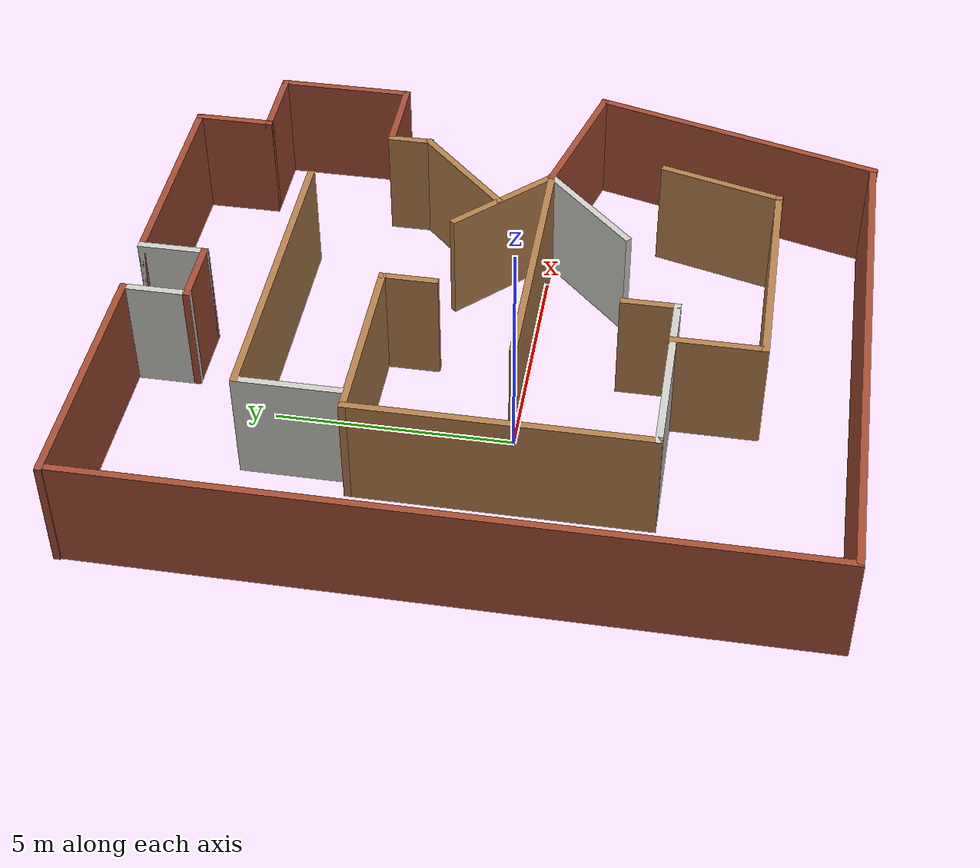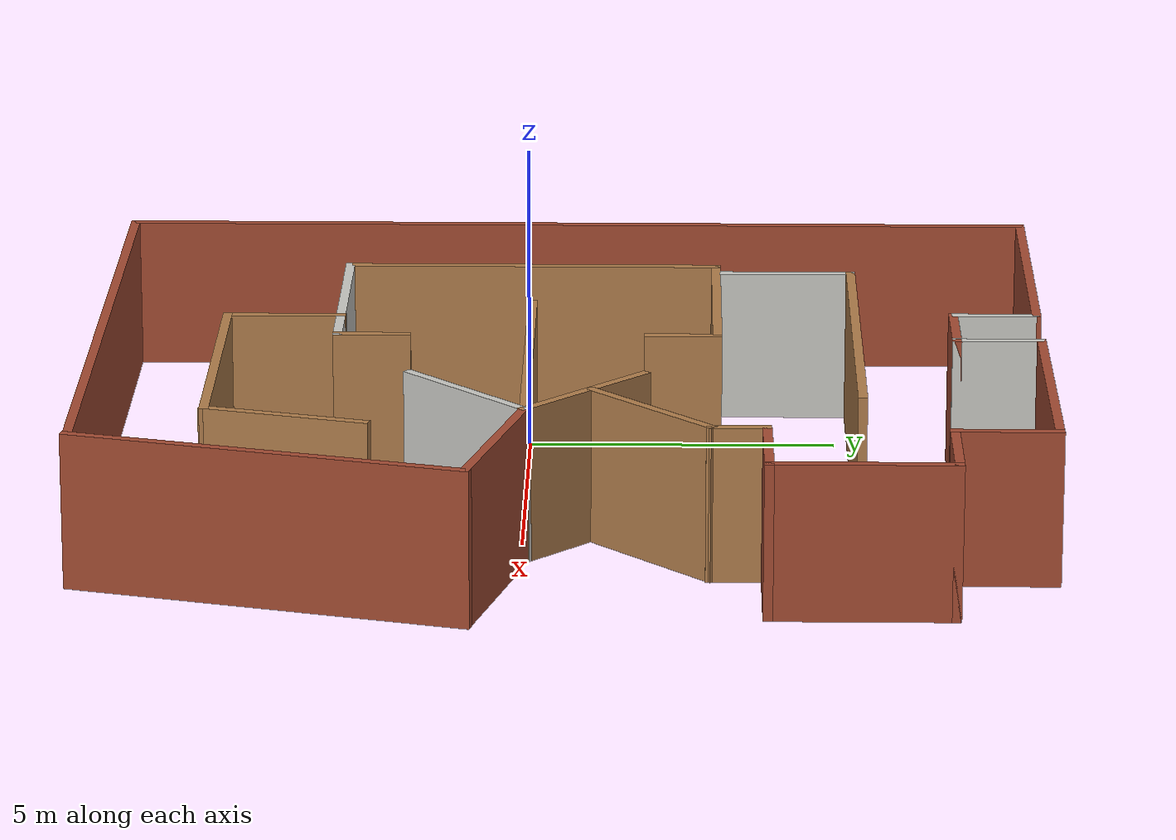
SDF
<?xml version='1.0'?>
<sdf version='1.6'>
  <model name='dat160_w1'>
    <pose frame=''>2.1593 0.681212 0 0 -0 0</pose>
    <link name='Wall_11'>
      <collision name='Wall_11_Collision'>
        <geometry>
          <box>
            <size>5.75 0.15 2.5</size>
          </box>
        </geometry>
        <pose frame=''>0 0 1.25 0 -0 0</pose>
      </collision>
      <visual name='Wall_11_Visual'>
        <pose frame=''>0 0 1.25 0 -0 0</pose>
        <geometry>
          <box>
            <size>5.75 0.15 2.5</size>
          </box>
        </geometry>
        <material>
          <script>
            <uri>file://media/materials/scripts/gazebo.material</uri>
            <name>Gazebo/Wood</name>
          </script>
          <ambient>1 1 1 1</ambient>
        </material>
        <meta>
          <layer>0</layer>
        </meta>
      </visual>
      <pose frame=''>0.799878 -0.630205 0 0 -0 0</pose>
    </link>
    <link name='Wall_14'>
      <collision name='Wall_14_Collision'>
        <geometry>
          <box>
            <size>2.75 0.15 2.5</size>
          </box>
        </geometry>
        <pose frame=''>0 0 1.25 0 -0 0</pose>
      </collision>
      <visual name='Wall_14_Visual'>
        <pose frame=''>0 0 1.25 0 -0 0</pose>
        <geometry>
          <box>
            <size>2.75 0.15 2.5</size>
          </box>
        </geometry>
        <material>
          <script>
            <uri>file://media/materials/scripts/gazebo.material</uri>
            <name>Gazebo/Wood</name>
          </script>
          <ambient>1 1 1 1</ambient>
        </material>
        <meta>
          <layer>0</layer>
        </meta>
      </visual>
      <pose frame=''>2.68064 0.289034 0 0 -0 2.35619</pose>
    </link>
    <link name='Wall_16'>
      <collision name='Wall_16_Collision'>
        <geometry>
          <box>
            <size>2.75 0.15 2.5</size>
          </box>
        </geometry>
        <pose frame=''>0 0 1.25 0 -0 0</pose>
      </collision>
      <visual name='Wall_16_Visual'>
        <pose frame=''>0 0 1.25 0 -0 0</pose>
        <geometry>
          <box>
            <size>2.75 0.15 2.5</size>
          </box>
        </geometry>
        <material>
          <script>
            <uri>file://media/materials/scripts/gazebo.material</uri>
            <name>Gazebo/CeilingTiled</name>
          </script>
          <ambient>1 1 1 1</ambient>
        </material>
        <meta>
          <layer>0</layer>
        </meta>
      </visual>
      <pose frame=''>2.68064 -1.54944 0 0 -0 -2.35619</pose>
    </link>
    <link name='Wall_18'>
      <collision name='Wall_18_Collision'>
        <geometry>
          <box>
            <size>2 0.15 2.5</size>
          </box>
        </geometry>
        <pose frame=''>0 0 1.25 0 -0 0</pose>
      </collision>
      <visual name='Wall_18_Visual'>
        <pose frame=''>0 0 1.25 0 -0 0</pose>
        <geometry>
          <box>
            <size>2 0.15 2.5</size>
          </box>
        </geometry>
        <material>
          <script>
            <uri>file://media/materials/scripts/gazebo.material</uri>
            <name>Gazebo/Wood</name>
          </script>
          <ambient>1 1 1 1</ambient>
        </material>
        <meta>
          <layer>0</layer>
        </meta>
      </visual>
      <pose frame=''>-1.22872 -4.64083 0 0 -0 -1.5708</pose>
    </link>
    <link name='Wall_19'>
      <collision name='Wall_19_Collision'>
        <geometry>
          <box>
            <size>5 0.15 2.5</size>
          </box>
        </geometry>
        <pose frame=''>0 0 1.25 0 -0 0</pose>
      </collision>
      <visual name='Wall_19_Visual'>
        <pose frame=''>0 0 1.25 0 -0 0</pose>
        <geometry>
          <box>
            <size>5 0.15 2.5</size>
          </box>
        </geometry>
        <material>
          <script>
            <uri>file://media/materials/scripts/gazebo.material</uri>
            <name>Gazebo/Wood</name>
          </script>
          <ambient>1 1 1 1</ambient>
        </material>
        <meta>
          <layer>0</layer>
        </meta>
      </visual>
      <pose frame=''>1.19628 -5.56583 0 0 -0 0</pose>
    </link>
    <link name='Wall_20'>
      <collision name='Wall_20_Collision'>
        <geometry>
          <box>
            <size>2.75 0.15 2.5</size>
          </box>
        </geometry>
        <pose frame=''>0 0 1.25 0 -0 0</pose>
      </collision>
      <visual name='Wall_20_Visual'>
        <pose frame=''>0 0 1.25 0 -0 0</pose>
        <geometry>
          <box>
            <size>2.75 0.15 2.5</size>
          </box>
        </geometry>
        <material>
          <script>
            <uri>file://media/materials/scripts/gazebo.material</uri>
            <name>Gazebo/Wood</name>
          </script>
          <ambient>1 1 1 1</ambient>
        </material>
        <meta>
          <layer>0</layer>
        </meta>
      </visual>
      <pose frame=''>3.95775 -4.31013 0 0 -0 1.309</pose>
    </link>
    <link name='Wall_23'>
      <collision name='Wall_23_Collision'>
        <geometry>
          <box>
            <size>2.25 0.15 2.5</size>
          </box>
        </geometry>
        <pose frame=''>0 0 1.25 0 -0 0</pose>
      </collision>
      <visual name='Wall_23_Visual'>
        <pose frame=''>0 0 1.25 0 -0 0</pose>
        <geometry>
          <box>
            <size>2.25 0.15 2.5</size>
          </box>
        </geometry>
        <material>
          <script>
            <uri>file://media/materials/scripts/gazebo.material</uri>
            <name>Gazebo/CeilingTiled</name>
          </script>
          <ambient>1 1 1 1</ambient>
        </material>
        <meta>
          <layer>0</layer>
        </meta>
      </visual>
      <pose frame=''>-3.70254 3.55862 0 0 -0 1.5708</pose>
    </link>
    <link name='Wall_24'>
      <collision name='Wall_24_Collision'>
        <geometry>
          <box>
            <size>6.75 0.15 2.5</size>
          </box>
        </geometry>
        <pose frame=''>0 0 1.25 0 -0 0</pose>
      </collision>
      <visual name='Wall_24_Visual'>
        <pose frame=''>0 0 1.25 0 -0 0</pose>
        <geometry>
          <box>
            <size>6.75 0.15 2.5</size>
          </box>
        </geometry>
        <material>
          <script>
            <uri>file://media/materials/scripts/gazebo.material</uri>
            <name>Gazebo/Wood</name>
          </script>
          <ambient>1 1 1 1</ambient>
        </material>
        <meta>
          <layer>0</layer>
        </meta>
      </visual>
      <pose frame=''>-0.402535 4.60862 0 0 -0 0</pose>
    </link>
    <link name='Wall_26'>
      <collision name='Wall_26_Collision'>
        <geometry>
          <box>
            <size>2.75 0.15 2.5</size>
          </box>
        </geometry>
        <pose frame=''>0 0 1.25 0 -0 0</pose>
      </collision>
      <visual name='Wall_26_Visual'>
        <pose frame=''>0 0 1.25 0 -0 0</pose>
        <geometry>
          <box>
            <size>2.75 0.15 2.5</size>
          </box>
        </geometry>
        <material>
          <script>
            <uri>file://media/materials/scripts/gazebo.material</uri>
            <name>Gazebo/Wood</name>
          </script>
          <ambient>1 1 1 1</ambient>
        </material>
        <meta>
          <layer>0</layer>
        </meta>
      </visual>
      <pose frame=''>3.52095 1.32644 0 0 -0 0.785398</pose>
    </link>
    <link name='Wall_27'>
      <collision name='Wall_27_Collision'>
        <geometry>
          <box>
            <size>1 0.15 2.5</size>
          </box>
        </geometry>
        <pose frame=''>0 0 1.25 0 -0 0</pose>
      </collision>
      <visual name='Wall_27_Visual'>
        <pose frame=''>0 0 1.25 0 -0 0</pose>
        <geometry>
          <box>
            <size>1 0.15 2.5</size>
          </box>
        </geometry>
        <material>
          <script>
            <uri>file://media/materials/scripts/gazebo.material</uri>
            <name>Gazebo/Wood</name>
          </script>
          <ambient>1 1 1 1</ambient>
        </material>
        <meta>
          <layer>0</layer>
        </meta>
      </visual>
      <pose frame=''>4.44019 2.67068 0 0 -0 1.5708</pose>
    </link>
    <link name='Wall_3'>
      <collision name='Wall_3_Collision'>
        <geometry>
          <box>
            <size>4 0.15 2.5</size>
          </box>
        </geometry>
        <pose frame=''>0 0 1.25 0 -0 0</pose>
      </collision>
      <visual name='Wall_3_Visual'>
        <pose frame=''>0 0 1.25 0 -0 0</pose>
        <geometry>
          <box>
            <size>4 0.15 2.5</size>
          </box>
        </geometry>
        <material>
          <script>
            <uri>file://media/materials/scripts/gazebo.material</uri>
            <name>Gazebo/Wood</name>
          </script>
          <ambient>1 1 1 1</ambient>
        </material>
        <meta>
          <layer>0</layer>
        </meta>
      </visual>
      <pose frame=''>-2.14994 2.37562 0 0 -0 0</pose>
    </link>
    <link name='Wall_31'>
      <collision name='Wall_31_Collision'>
        <geometry>
          <box>
            <size>1.5 0.15 2.5</size>
          </box>
        </geometry>
        <pose frame=''>0 0 1.25 0 -0 0</pose>
      </collision>
      <visual name='Wall_31_Visual'>
        <pose frame=''>0 0 1.25 0 -0 0</pose>
        <geometry>
          <box>
            <size>1.5 0.15 2.5</size>
          </box>
        </geometry>
        <material>
          <script>
            <uri>file://media/materials/scripts/gazebo.material</uri>
            <name>Gazebo/Bricks</name>
          </script>
          <ambient>1 1 1 1</ambient>
        </material>
        <meta>
          <layer>0</layer>
        </meta>
      </visual>
      <pose frame=''>-0.713318 6.20605 0 0 -0 0</pose>
    </link>
    <link name='Wall_32'>
      <collision name='Wall_32_Collision'>
        <geometry>
          <box>
            <size>1.5 0.15 2.5</size>
          </box>
        </geometry>
        <pose frame=''>0 0 1.25 0 -0 0</pose>
      </collision>
      <visual name='Wall_32_Visual'>
        <pose frame=''>0 0 1.25 0 -0 0</pose>
        <geometry>
          <box>
            <size>1.5 0.15 2.5</size>
          </box>
        </geometry>
        <material>
          <script>
            <uri>file://media/materials/scripts/gazebo.material</uri>
            <name>Gazebo/CeilingTiled</name>
          </script>
          <ambient>1 1 1 1</ambient>
        </material>
        <meta>
          <layer>0</layer>
        </meta>
      </visual>
      <pose frame=''>-0.038317 6.88105 0 0 -0 1.5708</pose>
    </link>
    <link name='Wall_33'>
      <collision name='Wall_33_Collision'>
        <geometry>
          <box>
            <size>4.75 0.15 2.5</size>
          </box>
        </geometry>
        <pose frame=''>0 0 1.25 0 -0 0</pose>
      </collision>
      <visual name='Wall_33_Visual'>
        <pose frame=''>0 0 1.25 0 -0 0</pose>
        <geometry>
          <box>
            <size>4.75 0.15 2.5</size>
          </box>
        </geometry>
        <material>
          <script>
            <uri>file://media/materials/scripts/gazebo.material</uri>
            <name>Gazebo/Bricks</name>
          </script>
          <ambient>1 1 1 1</ambient>
        </material>
        <meta>
          <layer>0</layer>
        </meta>
      </visual>
      <pose frame=''>2.26168 7.55605 0 0 -0 0</pose>
    </link>
    <link name='Wall_34'>
      <collision name='Wall_34_Collision'>
        <geometry>
          <box>
            <size>1.75 0.15 2.5</size>
          </box>
        </geometry>
        <pose frame=''>0 0 1.25 0 -0 0</pose>
      </collision>
      <visual name='Wall_34_Visual'>
        <pose frame=''>0 0 1.25 0 -0 0</pose>
        <geometry>
          <box>
            <size>1.75 0.15 2.5</size>
          </box>
        </geometry>
        <material>
          <script>
            <uri>file://media/materials/scripts/gazebo.material</uri>
            <name>Gazebo/Bricks</name>
          </script>
          <ambient>1 1 1 1</ambient>
        </material>
        <meta>
          <layer>0</layer>
        </meta>
      </visual>
      <pose frame=''>4.56168 6.75605 0 0 -0 -1.5708</pose>
    </link>
    <link name='Wall_35'>
      <collision name='Wall_35_Collision'>
        <geometry>
          <box>
            <size>1.75 0.15 2.5</size>
          </box>
        </geometry>
        <pose frame=''>0 0 1.25 0 -0 0</pose>
      </collision>
      <visual name='Wall_35_Visual'>
        <pose frame=''>0 0 1.25 0 -0 0</pose>
        <geometry>
          <box>
            <size>1.75 0.15 2.5</size>
          </box>
        </geometry>
        <material>
          <script>
            <uri>file://media/materials/scripts/gazebo.material</uri>
            <name>Gazebo/Bricks</name>
          </script>
          <ambient>1 1 1 1</ambient>
        </material>
        <meta>
          <layer>0</layer>
        </meta>
      </visual>
      <pose frame=''>5.36168 5.95605 0 0 -0 0</pose>
    </link>
    <link name='Wall_36'>
      <collision name='Wall_36_Collision'>
        <geometry>
          <box>
            <size>3 0.15 2.5</size>
          </box>
        </geometry>
        <pose frame=''>0 0 1.25 0 -0 0</pose>
      </collision>
      <visual name='Wall_36_Visual'>
        <pose frame=''>0 0 1.25 0 -0 0</pose>
        <geometry>
          <box>
            <size>3 0.15 2.5</size>
          </box>
        </geometry>
        <material>
          <script>
            <uri>file://media/materials/scripts/gazebo.material</uri>
            <name>Gazebo/Bricks</name>
          </script>
          <ambient>1 1 1 1</ambient>
        </material>
        <meta>
          <layer>0</layer>
        </meta>
      </visual>
      <pose frame=''>6.16168 4.53105 0 0 -0 -1.5708</pose>
    </link>
    <link name='Wall_37'>
      <collision name='Wall_37_Collision'>
        <geometry>
          <box>
            <size>1.75 0.15 2.5</size>
          </box>
        </geometry>
        <pose frame=''>0 0 1.25 0 -0 0</pose>
      </collision>
      <visual name='Wall_37_Visual'>
        <pose frame=''>0 0 1.25 0 -0 0</pose>
        <geometry>
          <box>
            <size>1.75 0.15 2.5</size>
          </box>
        </geometry>
        <material>
          <script>
            <uri>file://media/materials/scripts/gazebo.material</uri>
            <name>Gazebo/Bricks</name>
          </script>
          <ambient>1 1 1 1</ambient>
        </material>
        <meta>
          <layer>0</layer>
        </meta>
      </visual>
      <pose frame=''>5.36168 3.10605 0 0 -0 3.14159</pose>
    </link>
    <link name='Wall_39'>
      <collision name='Wall_39_Collision'>
        <geometry>
          <box>
            <size>1.5 0.15 2.5</size>
          </box>
        </geometry>
        <pose frame=''>0 0 1.25 0 -0 0</pose>
      </collision>
      <visual name='Wall_39_Visual'>
        <pose frame=''>0 0 1.25 0 -0 0</pose>
        <geometry>
          <box>
            <size>1.5 0.15 2.5</size>
          </box>
        </geometry>
        <material>
          <script>
            <uri>file://media/materials/scripts/gazebo.material</uri>
            <name>Gazebo/CeilingTiled</name>
          </script>
          <ambient>1 1 1 1</ambient>
        </material>
        <meta>
          <layer>0</layer>
        </meta>
      </visual>
      <pose frame=''>-1.38832 6.88105 0 0 -0 1.5708</pose>
    </link>
    <link name='Wall_41'>
      <collision name='Wall_41_Collision'>
        <geometry>
          <box>
            <size>5.34587 0.15 2.5</size>
          </box>
        </geometry>
        <pose frame=''>0 0 1.25 0 -0 0</pose>
      </collision>
      <visual name='Wall_41_Visual'>
        <pose frame=''>0 0 1.25 0 -0 0</pose>
        <geometry>
          <box>
            <size>5.34587 0.15 2.5</size>
          </box>
        </geometry>
        <material>
          <script>
            <uri>file://media/materials/scripts/gazebo.material</uri>
            <name>Gazebo/Bricks</name>
          </script>
          <ambient>1 1 1 1</ambient>
        </material>
        <meta>
          <layer>0</layer>
        </meta>
      </visual>
      <pose frame=''>-3.98622 7.56935 0 0 -0 3.13647</pose>
    </link>
    <link name='Wall_42'>
      <collision name='Wall_42_Collision'>
        <geometry>
          <box>
            <size>15.25 0.15 2.5</size>
          </box>
        </geometry>
        <pose frame=''>0 0 1.25 0 -0 0</pose>
      </collision>
      <visual name='Wall_42_Visual'>
        <pose frame=''>0 0 1.25 0 -0 0</pose>
        <geometry>
          <box>
            <size>15.25 0.15 2.5</size>
          </box>
        </geometry>
        <material>
          <script>
            <uri>file://media/materials/scripts/gazebo.material</uri>
            <name>Gazebo/Bricks</name>
          </script>
          <ambient>1 1 1 1</ambient>
        </material>
        <meta>
          <layer>0</layer>
        </meta>
      </visual>
      <pose frame=''>-6.55752 0.006046 0 0 -0 -1.5708</pose>
    </link>
    <link name='Wall_44'>
      <collision name='Wall_44_Collision'>
        <geometry>
          <box>
            <size>11.5 0.15 2.5</size>
          </box>
        </geometry>
        <pose frame=''>0 0 1.25 0 -0 0</pose>
      </collision>
      <visual name='Wall_44_Visual'>
        <pose frame=''>0 0 1.25 0 -0 0</pose>
        <geometry>
          <box>
            <size>11.5 0.15 2.5</size>
          </box>
        </geometry>
        <material>
          <script>
            <uri>file://media/materials/scripts/gazebo.material</uri>
            <name>Gazebo/Bricks</name>
          </script>
          <ambient>1 1 1 1</ambient>
        </material>
        <meta>
          <layer>0</layer>
        </meta>
      </visual>
      <pose frame=''>-0.88252 -7.54395 0 0 -0 0</pose>
    </link>
    <link name='Wall_46'>
      <collision name='Wall_46_Collision'>
        <geometry>
          <box>
            <size>3.19864 0.15 2.5</size>
          </box>
        </geometry>
        <pose frame=''>0 0 1.25 0 -0 0</pose>
      </collision>
      <visual name='Wall_46_Visual'>
        <pose frame=''>0 0 1.25 0 -0 0</pose>
        <geometry>
          <box>
            <size>3.19864 0.15 2.5</size>
          </box>
        </geometry>
        <material>
          <script>
            <uri>file://media/materials/scripts/gazebo.material</uri>
            <name>Gazebo/Bricks</name>
          </script>
          <ambient>1 1 1 1</ambient>
        </material>
        <meta>
          <layer>0</layer>
        </meta>
      </visual>
      <pose frame=''>5.07046 -1.03137 0 0 -0 -0.266316</pose>
    </link>
    <link name='Wall_47'>
      <collision name='Wall_47_Collision'>
        <geometry>
          <box>
            <size>6.5 0.15 2.5</size>
          </box>
        </geometry>
        <pose frame=''>0 0 1.25 0 -0 0</pose>
      </collision>
      <visual name='Wall_47_Visual'>
        <pose frame=''>0 0 1.25 0 -0 0</pose>
        <geometry>
          <box>
            <size>6.5 0.15 2.5</size>
          </box>
        </geometry>
        <material>
          <script>
            <uri>file://media/materials/scripts/gazebo.material</uri>
            <name>Gazebo/Bricks</name>
          </script>
          <ambient>1 1 1 1</ambient>
        </material>
        <meta>
          <layer>0</layer>
        </meta>
      </visual>
      <pose frame=''>5.7459 -4.49936 0 0 -0 -1.8326</pose>
    </link>
    <link name='Wall_5'>
      <collision name='Wall_5_Collision'>
        <geometry>
          <box>
            <size>6.25 0.15 2.5</size>
          </box>
        </geometry>
        <pose frame=''>0 0 1.25 0 -0 0</pose>
      </collision>
      <visual name='Wall_5_Visual'>
        <pose frame=''>0 0 1.25 0 -0 0</pose>
        <geometry>
          <box>
            <size>6.25 0.15 2.5</size>
          </box>
        </geometry>
        <material>
          <script>
            <uri>file://media/materials/scripts/gazebo.material</uri>
            <name>Gazebo/Wood</name>
          </script>
          <ambient>1 1 1 1</ambient>
        </material>
        <meta>
          <layer>0</layer>
        </meta>
      </visual>
      <pose frame=''>-4.07494 -0.674383 0 0 -0 -1.5708</pose>
    </link>
    <link name='Wall_6'>
      <collision name='Wall_6_Collision'>
        <geometry>
          <box>
            <size>4 0.15 2.5</size>
          </box>
        </geometry>
        <pose frame=''>0 0 1.25 0 -0 0</pose>
      </collision>
      <visual name='Wall_6_Visual'>
        <pose frame=''>0 0 1.25 0 -0 0</pose>
        <geometry>
          <box>
            <size>4 0.15 2.5</size>
          </box>
        </geometry>
        <material>
          <script>
            <uri>file://media/materials/scripts/gazebo.material</uri>
            <name>Gazebo/CeilingTiled</name>
          </script>
          <ambient>1 1 1 1</ambient>
        </material>
        <meta>
          <layer>0</layer>
        </meta>
      </visual>
      <pose frame=''>-2.14994 -3.72438 0 0 -0 0</pose>
    </link>
    <link name='Wall_7'>
      <collision name='Wall_7_Collision'>
        <geometry>
          <box>
            <size>1.25 0.15 2.5</size>
          </box>
        </geometry>
        <pose frame=''>0 0 1.25 0 -0 0</pose>
      </collision>
      <visual name='Wall_7_Visual'>
        <pose frame=''>0 0 1.25 0 -0 0</pose>
        <geometry>
          <box>
            <size>1.25 0.15 2.5</size>
          </box>
        </geometry>
        <material>
          <script>
            <uri>file://media/materials/scripts/gazebo.material</uri>
            <name>Gazebo/Wood</name>
          </script>
          <ambient>1 1 1 1</ambient>
        </material>
        <meta>
          <layer>0</layer>
        </meta>
      </visual>
      <pose frame=''>-0.224938 -3.17438 0 0 -0 1.5708</pose>
    </link>
    <link name='Wall_9'>
      <collision name='Wall_9_Collision'>
        <geometry>
          <box>
            <size>1.25 0.15 2.5</size>
          </box>
        </geometry>
        <pose frame=''>0 0 1.25 0 -0 0</pose>
      </collision>
      <visual name='Wall_9_Visual'>
        <pose frame=''>0 0 1.25 0 -0 0</pose>
        <geometry>
          <box>
            <size>1.25 0.15 2.5</size>
          </box>
        </geometry>
        <material>
          <script>
            <uri>file://media/materials/scripts/gazebo.material</uri>
            <name>Gazebo/Wood</name>
          </script>
          <ambient>1 1 1 1</ambient>
        </material>
        <meta>
          <layer>0</layer>
        </meta>
      </visual>
      <pose frame=''>-0.224938 1.82562 0 0 -0 -1.5708</pose>
    </link>
    <static>1</static>
  </model>
</sdf>
